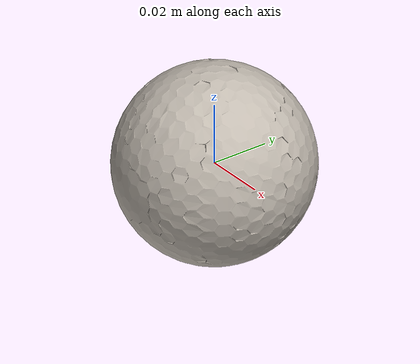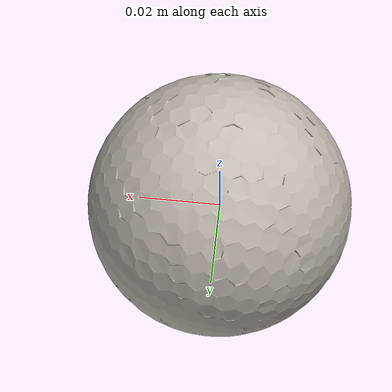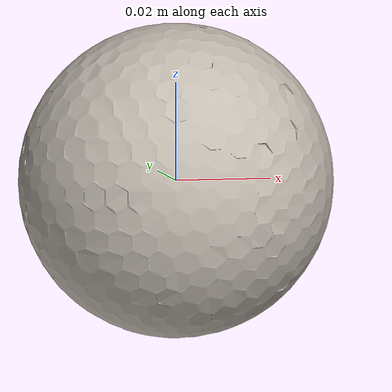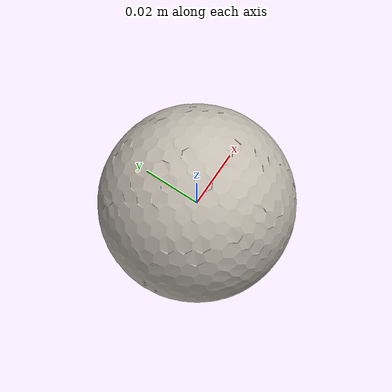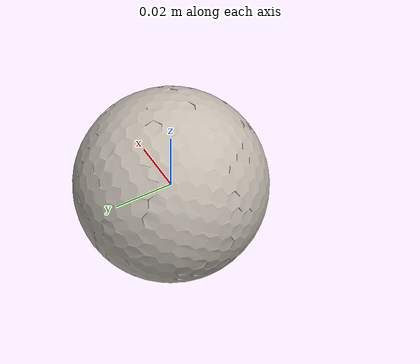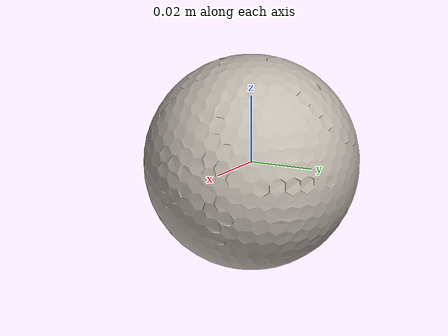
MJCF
<mujoco model="ball_fb95c7cd">
  <compiler angle="radian"/>
  <asset>
    <texture type="2d" name="ball_fb95c7cd_tex" file="ball_fb95c7cd_visual_0.png"/>
    <material name="ball_fb95c7cd_mat" texture="ball_fb95c7cd_tex"/>
    <mesh name="ball_fb95c7cd_visual" content_type="model/obj" file="ball_fb95c7cd_visual.obj" scale="-1.60391 1.60391 1.60391"/>
    <mesh name="ball_fb95c7cd_c0" content_type="model/obj" file="ball_fb95c7cd_c0.obj" scale="-1.60391 1.60391 1.60391"/>
  </asset>
  <worldbody>
    <body name="ball_fb95c7cd">
      <freejoint/>
      <geom name="ball_fb95c7cd_visual" type="mesh" mesh="ball_fb95c7cd_visual" mass="1e-8" contype="0" conaffinity="0" group="2" material="ball_fb95c7cd_mat"/>
      <geom name="ball_fb95c7cd_c0" type="mesh" mesh="ball_fb95c7cd_c0" group="3" density="423.113" friction="0.9 0.05 0.005" condim="4" rgba="0.4 0.5 0.9 0.35"/>
    </body>
  </worldbody>
</mujoco>
